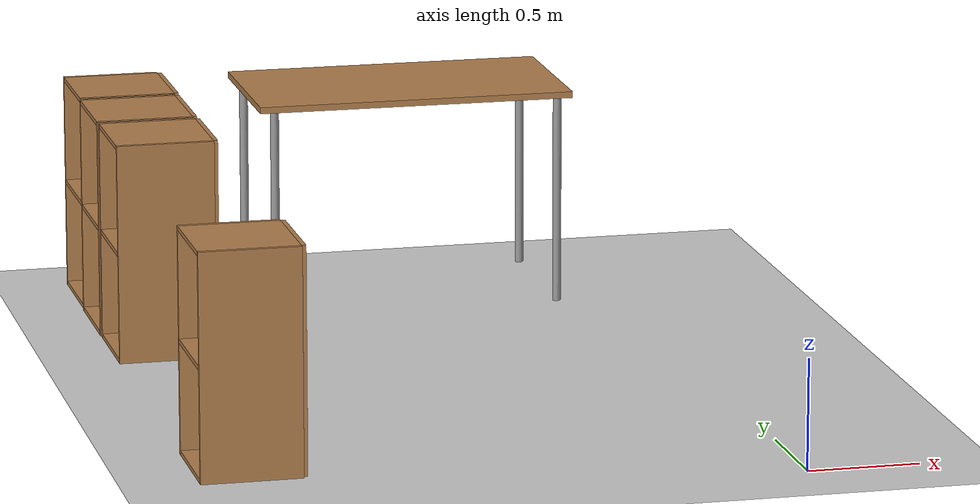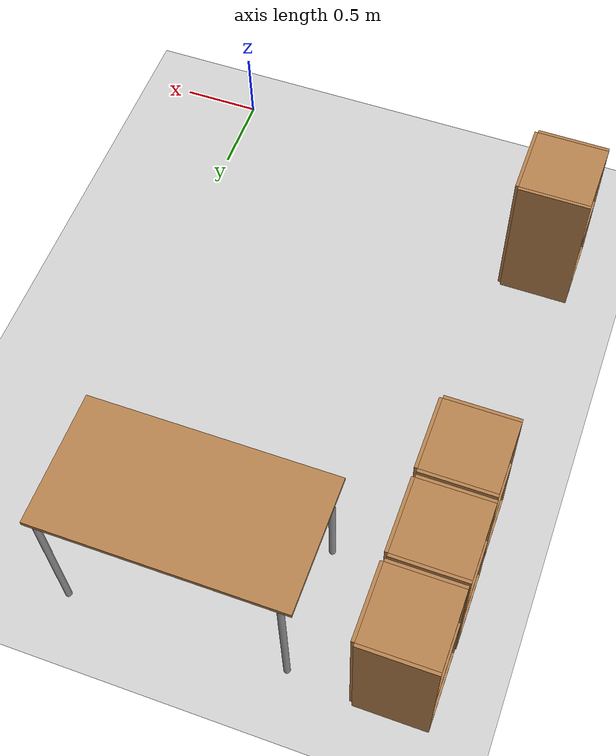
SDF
<sdf version="1.7">
 <world name="default">
  <model name="ground_plane">
   <pose>0 0 0 0 -0 1</pose>
   <static>1</static>
   <link name="link">
    <collision name="collision">
     <geometry><plane><normal>0 0 1</normal><size>100 100</size></plane></geometry>
     <surface>
      <contact><collide_bitmask>65535</collide_bitmask></contact>
      <friction><ode><mu>100</mu><mu2>50</mu2></ode></friction>
     </surface>
    </collision>
    <visual name="visual">
     <cast_shadows>0</cast_shadows>
     <geometry><plane><normal>0 0 1</normal><size>100 100</size></plane></geometry>
     <material>
      <script><uri>file://media/materials/scripts/gazebo.material</uri><name>Gazebo/Grey</name></script>
     </material>
    </visual>
   </link>
  </model>
  <model name="cabinet">
   <static>1</static>
   <link name="cabinet_bottom_plate">
    <inertial>
     <pose>0 0 -1 0 -0 0</pose>
     <inertia><ixx>2.05</ixx><ixy>0</ixy><ixz>0</ixz><iyy>2.05</iyy><iyz>0</iyz><izz>2.05</izz></inertia>
     <mass>25</mass>
    </inertial>
    <collision name="cabinet_bottom_plate_geom">
     <pose>0 0 0.01 0 -0 0</pose>
     <geometry><box><size>0.45 0.45 0.02</size></box></geometry>
    </collision>
    <visual name="cabinet_bottom_plate_geom_visual">
     <pose>0 0 0.01 0 -0 0</pose>
     <geometry><box><size>0.45 0.45 0.02</size></box></geometry>
     <material>
      <script><uri>file://media/materials/scripts/gazebo.material</uri><name>Gazebo/Wood</name></script>
     </material>
    </visual>
    <collision name="cabinet_bottom_plate_geom_cabinet_back_plate">
     <pose>0.235 0 0.51 0 -0 0</pose>
     <geometry><box><size>0.02 0.45 1.02</size></box></geometry>
    </collision>
    <visual name="cabinet_bottom_plate_geom_cabinet_back_plate_visual">
     <pose>0.235 0 0.51 0 -0 0</pose>
     <geometry><box><size>0.02 0.45 1.02</size></box></geometry>
     <material>
      <script><uri>file://media/materials/scripts/gazebo.material</uri><name>Gazebo/Wood</name></script>
     </material>
    </visual>
    <collision name="cabinet_bottom_plate_geom_cabinet_left_plate">
     <pose>0 0.235 0.51 0 -0 0</pose>
     <geometry><box><size>0.45 0.02 1.02</size></box></geometry>
    </collision>
    <visual name="cabinet_bottom_plate_geom_cabinet_left_plate_visual">
     <pose>0 0.235 0.51 0 -0 0</pose>
     <geometry><box><size>0.45 0.02 1.02</size></box></geometry>
     <material>
      <script><uri>file://media/materials/scripts/gazebo.material</uri><name>Gazebo/Wood</name></script>
     </material>
    </visual>
    <collision name="cabinet_bottom_plate_geom_cabinet_middle_plate">
     <pose>0 0 0.51 0 -0 0</pose>
     <geometry><box><size>0.45 0.45 0.02</size></box></geometry>
    </collision>
    <visual name="cabinet_bottom_plate_geom_cabinet_middle_plate_visual">
     <pose>0 0 0.51 0 -0 0</pose>
     <geometry><box><size>0.45 0.45 0.02</size></box></geometry>
     <material>
      <script><uri>file://media/materials/scripts/gazebo.material</uri><name>Gazebo/Wood</name></script>
     </material>
    </visual>
    <collision name="cabinet_bottom_plate_geom_cabinet_right_plate">
     <pose>0 -0.235 0.51 0 -0 0</pose>
     <geometry><box><size>0.45 0.02 1.02</size></box></geometry>
    </collision>
    <visual name="cabinet_bottom_plate_geom_cabinet_right_plate_visual">
     <pose>0 -0.235 0.51 0 -0 0</pose>
     <geometry><box><size>0.45 0.02 1.02</size></box></geometry>
     <material>
      <script><uri>file://media/materials/scripts/gazebo.material</uri><name>Gazebo/Wood</name></script>
     </material>
    </visual>
    <collision name="cabinet_bottom_plate_geom_cabinet_top_plate">
     <pose>0 0 1.01 0 -0 0</pose>
     <geometry><box><size>0.45 0.45 0.02</size></box></geometry>
    </collision>
    <visual name="cabinet_bottom_plate_geom_cabinet_top_plate_visual">
     <pose>0 0 1.01 0 -0 0</pose>
     <geometry><box><size>0.45 0.45 0.02</size></box></geometry>
     <material>
      <script><uri>file://media/materials/scripts/gazebo.material</uri><name>Gazebo/Wood</name></script>
     </material>
    </visual>
   </link>
   <pose>-2.34318 3.63904 0 0 -0 0</pose>
  </model>
  <model name="cabinet_clone">
   <static>1</static>
   <link name="cabinet_bottom_plate">
    <inertial>
     <pose>0 0 -1 0 -0 0</pose>
     <inertia><ixx>2.05</ixx><ixy>0</ixy><ixz>0</ixz><iyy>2.05</iyy><iyz>0</iyz><izz>2.05</izz></inertia>
     <mass>25</mass>
    </inertial>
    <collision name="cabinet_bottom_plate_geom">
     <pose>0 0 0.01 0 -0 0</pose>
     <geometry><box><size>0.45 0.45 0.02</size></box></geometry>
    </collision>
    <visual name="cabinet_bottom_plate_geom_visual">
     <pose>0 0 0.01 0 -0 0</pose>
     <geometry><box><size>0.45 0.45 0.02</size></box></geometry>
     <material>
      <script><uri>file://media/materials/scripts/gazebo.material</uri><name>Gazebo/Wood</name></script>
     </material>
    </visual>
    <collision name="cabinet_bottom_plate_geom_cabinet_back_plate">
     <pose>0.235 0 0.51 0 -0 0</pose>
     <geometry><box><size>0.02 0.45 1.02</size></box></geometry>
    </collision>
    <visual name="cabinet_bottom_plate_geom_cabinet_back_plate_visual">
     <pose>0.235 0 0.51 0 -0 0</pose>
     <geometry><box><size>0.02 0.45 1.02</size></box></geometry>
     <material>
      <script><uri>file://media/materials/scripts/gazebo.material</uri><name>Gazebo/Wood</name></script>
     </material>
    </visual>
    <collision name="cabinet_bottom_plate_geom_cabinet_left_plate">
     <pose>0 0.235 0.51 0 -0 0</pose>
     <geometry><box><size>0.45 0.02 1.02</size></box></geometry>
    </collision>
    <visual name="cabinet_bottom_plate_geom_cabinet_left_plate_visual">
     <pose>0 0.235 0.51 0 -0 0</pose>
     <geometry><box><size>0.45 0.02 1.02</size></box></geometry>
     <material>
      <script><uri>file://media/materials/scripts/gazebo.material</uri><name>Gazebo/Wood</name></script>
     </material>
    </visual>
    <collision name="cabinet_bottom_plate_geom_cabinet_middle_plate">
     <pose>0 0 0.51 0 -0 0</pose>
     <geometry><box><size>0.45 0.45 0.02</size></box></geometry>
    </collision>
    <visual name="cabinet_bottom_plate_geom_cabinet_middle_plate_visual">
     <pose>0 0 0.51 0 -0 0</pose>
     <geometry><box><size>0.45 0.45 0.02</size></box></geometry>
     <material>
      <script><uri>file://media/materials/scripts/gazebo.material</uri><name>Gazebo/Wood</name></script>
     </material>
    </visual>
    <collision name="cabinet_bottom_plate_geom_cabinet_right_plate">
     <pose>0 -0.235 0.51 0 -0 0</pose>
     <geometry><box><size>0.45 0.02 1.02</size></box></geometry>
    </collision>
    <visual name="cabinet_bottom_plate_geom_cabinet_right_plate_visual">
     <pose>0 -0.235 0.51 0 -0 0</pose>
     <geometry><box><size>0.45 0.02 1.02</size></box></geometry>
     <material>
      <script><uri>file://media/materials/scripts/gazebo.material</uri><name>Gazebo/Wood</name></script>
     </material>
    </visual>
    <collision name="cabinet_bottom_plate_geom_cabinet_top_plate">
     <pose>0 0 1.01 0 -0 0</pose>
     <geometry><box><size>0.45 0.45 0.02</size></box></geometry>
    </collision>
    <visual name="cabinet_bottom_plate_geom_cabinet_top_plate_visual">
     <pose>0 0 1.01 0 -0 0</pose>
     <geometry><box><size>0.45 0.45 0.02</size></box></geometry>
     <material>
      <script><uri>file://media/materials/scripts/gazebo.material</uri><name>Gazebo/Wood</name></script>
     </material>
    </visual>
   </link>
   <pose>-2.34868 3.13711 0 0 -0 0</pose>
  </model>
  <model name="cabinet_clone_0">
   <static>1</static>
   <link name="cabinet_bottom_plate">
    <inertial>
     <pose>0 0 -1 0 -0 0</pose>
     <inertia><ixx>2.05</ixx><ixy>0</ixy><ixz>0</ixz><iyy>2.05</iyy><iyz>0</iyz><izz>2.05</izz></inertia>
     <mass>25</mass>
    </inertial>
    <collision name="cabinet_bottom_plate_geom">
     <pose>0 0 0.01 0 -0 0</pose>
     <geometry><box><size>0.45 0.45 0.02</size></box></geometry>
    </collision>
    <visual name="cabinet_bottom_plate_geom_visual">
     <pose>0 0 0.01 0 -0 0</pose>
     <geometry><box><size>0.45 0.45 0.02</size></box></geometry>
     <material>
      <script><uri>file://media/materials/scripts/gazebo.material</uri><name>Gazebo/Wood</name></script>
     </material>
    </visual>
    <collision name="cabinet_bottom_plate_geom_cabinet_back_plate">
     <pose>0.235 0 0.51 0 -0 0</pose>
     <geometry><box><size>0.02 0.45 1.02</size></box></geometry>
    </collision>
    <visual name="cabinet_bottom_plate_geom_cabinet_back_plate_visual">
     <pose>0.235 0 0.51 0 -0 0</pose>
     <geometry><box><size>0.02 0.45 1.02</size></box></geometry>
     <material>
      <script><uri>file://media/materials/scripts/gazebo.material</uri><name>Gazebo/Wood</name></script>
     </material>
    </visual>
    <collision name="cabinet_bottom_plate_geom_cabinet_left_plate">
     <pose>0 0.235 0.51 0 -0 0</pose>
     <geometry><box><size>0.45 0.02 1.02</size></box></geometry>
    </collision>
    <visual name="cabinet_bottom_plate_geom_cabinet_left_plate_visual">
     <pose>0 0.235 0.51 0 -0 0</pose>
     <geometry><box><size>0.45 0.02 1.02</size></box></geometry>
     <material>
      <script><uri>file://media/materials/scripts/gazebo.material</uri><name>Gazebo/Wood</name></script>
     </material>
    </visual>
    <collision name="cabinet_bottom_plate_geom_cabinet_middle_plate">
     <pose>0 0 0.51 0 -0 0</pose>
     <geometry><box><size>0.45 0.45 0.02</size></box></geometry>
    </collision>
    <visual name="cabinet_bottom_plate_geom_cabinet_middle_plate_visual">
     <pose>0 0 0.51 0 -0 0</pose>
     <geometry><box><size>0.45 0.45 0.02</size></box></geometry>
     <material>
      <script><uri>file://media/materials/scripts/gazebo.material</uri><name>Gazebo/Wood</name></script>
     </material>
    </visual>
    <collision name="cabinet_bottom_plate_geom_cabinet_right_plate">
     <pose>0 -0.235 0.51 0 -0 0</pose>
     <geometry><box><size>0.45 0.02 1.02</size></box></geometry>
    </collision>
    <visual name="cabinet_bottom_plate_geom_cabinet_right_plate_visual">
     <pose>0 -0.235 0.51 0 -0 0</pose>
     <geometry><box><size>0.45 0.02 1.02</size></box></geometry>
     <material>
      <script><uri>file://media/materials/scripts/gazebo.material</uri><name>Gazebo/Wood</name></script>
     </material>
    </visual>
    <collision name="cabinet_bottom_plate_geom_cabinet_top_plate">
     <pose>0 0 1.01 0 -0 0</pose>
     <geometry><box><size>0.45 0.45 0.02</size></box></geometry>
    </collision>
    <visual name="cabinet_bottom_plate_geom_cabinet_top_plate_visual">
     <pose>0 0 1.01 0 -0 0</pose>
     <geometry><box><size>0.45 0.45 0.02</size></box></geometry>
     <material>
      <script><uri>file://media/materials/scripts/gazebo.material</uri><name>Gazebo/Wood</name></script>
     </material>
    </visual>
   </link>
   <pose>-2.34547 2.63327 0 0 -0 0</pose>
  </model>
  <model name="cabinet_clone_4">
   <static>1</static>
   <link name="cabinet_bottom_plate">
    <inertial>
     <pose>0 0 -1 0 -0 0</pose>
     <inertia><ixx>2.05</ixx><ixy>0</ixy><ixz>0</ixz><iyy>2.05</iyy><iyz>0</iyz><izz>2.05</izz></inertia>
     <mass>25</mass>
    </inertial>
    <collision name="cabinet_bottom_plate_geom">
     <pose>0 0 0.01 0 -0 0</pose>
     <geometry><box><size>0.45 0.45 0.02</size></box></geometry>
    </collision>
    <visual name="cabinet_bottom_plate_geom_visual">
     <pose>0 0 0.01 0 -0 0</pose>
     <geometry><box><size>0.45 0.45 0.02</size></box></geometry>
     <material>
      <script><uri>file://media/materials/scripts/gazebo.material</uri><name>Gazebo/Wood</name></script>
     </material>
    </visual>
    <collision name="cabinet_bottom_plate_geom_cabinet_back_plate">
     <pose>0.235 0 0.51 0 -0 0</pose>
     <geometry><box><size>0.02 0.45 1.02</size></box></geometry>
    </collision>
    <visual name="cabinet_bottom_plate_geom_cabinet_back_plate_visual">
     <pose>0.235 0 0.51 0 -0 0</pose>
     <geometry><box><size>0.02 0.45 1.02</size></box></geometry>
     <material>
      <script><uri>file://media/materials/scripts/gazebo.material</uri><name>Gazebo/Wood</name></script>
     </material>
    </visual>
    <collision name="cabinet_bottom_plate_geom_cabinet_left_plate">
     <pose>0 0.235 0.51 0 -0 0</pose>
     <geometry><box><size>0.45 0.02 1.02</size></box></geometry>
    </collision>
    <visual name="cabinet_bottom_plate_geom_cabinet_left_plate_visual">
     <pose>0 0.235 0.51 0 -0 0</pose>
     <geometry><box><size>0.45 0.02 1.02</size></box></geometry>
     <material>
      <script><uri>file://media/materials/scripts/gazebo.material</uri><name>Gazebo/Wood</name></script>
     </material>
    </visual>
    <collision name="cabinet_bottom_plate_geom_cabinet_middle_plate">
     <pose>0 0 0.51 0 -0 0</pose>
     <geometry><box><size>0.45 0.45 0.02</size></box></geometry>
    </collision>
    <visual name="cabinet_bottom_plate_geom_cabinet_middle_plate_visual">
     <pose>0 0 0.51 0 -0 0</pose>
     <geometry><box><size>0.45 0.45 0.02</size></box></geometry>
     <material>
      <script><uri>file://media/materials/scripts/gazebo.material</uri><name>Gazebo/Wood</name></script>
     </material>
    </visual>
    <collision name="cabinet_bottom_plate_geom_cabinet_right_plate">
     <pose>0 -0.235 0.51 0 -0 0</pose>
     <geometry><box><size>0.45 0.02 1.02</size></box></geometry>
    </collision>
    <visual name="cabinet_bottom_plate_geom_cabinet_right_plate_visual">
     <pose>0 -0.235 0.51 0 -0 0</pose>
     <geometry><box><size>0.45 0.02 1.02</size></box></geometry>
     <material>
      <script><uri>file://media/materials/scripts/gazebo.material</uri><name>Gazebo/Wood</name></script>
     </material>
    </visual>
    <collision name="cabinet_bottom_plate_geom_cabinet_top_plate">
     <pose>0 0 1.01 0 -0 0</pose>
     <geometry><box><size>0.45 0.45 0.02</size></box></geometry>
    </collision>
    <visual name="cabinet_bottom_plate_geom_cabinet_top_plate_visual">
     <pose>0 0 1.01 0 -0 0</pose>
     <geometry><box><size>0.45 0.45 0.02</size></box></geometry>
     <material>
      <script><uri>file://media/materials/scripts/gazebo.material</uri><name>Gazebo/Wood</name></script>
     </material>
    </visual>
   </link>
   <pose>-2.34562 0.634937 0 0 -0 0</pose>
  </model>
  <model name="table_clone">
   <static>1</static>
   <link name="link">
    <collision name="surface">
     <pose>0 0 1 0 -0 0</pose>
     <geometry><box><size>1.5 0.8 0.03</size></box></geometry>
     <surface><friction><ode><mu>0.6</mu><mu2>0.6</mu2></ode></friction></surface>
    </collision>
    <visual name="visual1">
     <pose>0 0 1 0 -0 0</pose>
     <geometry><box><size>1.5 0.8 0.03</size></box></geometry>
     <material>
      <script><uri>file://media/materials/scripts/gazebo.material</uri><name>Gazebo/Wood</name></script>
     </material>
    </visual>
    <collision name="front_left_leg">
     <pose>0.68 0.38 0.5 0 -0 0</pose>
     <geometry><cylinder><radius>0.02</radius><length>1</length></cylinder></geometry>
    </collision>
    <visual name="front_left_leg">
     <pose>0.68 0.38 0.5 0 -0 0</pose>
     <geometry><cylinder><radius>0.02</radius><length>1</length></cylinder></geometry>
     <material>
      <script><uri>file://media/materials/scripts/gazebo.material</uri><name>Gazebo/Grey</name></script>
     </material>
    </visual>
    <collision name="front_right_leg">
     <pose>0.68 -0.38 0.5 0 -0 0</pose>
     <geometry><cylinder><radius>0.02</radius><length>1</length></cylinder></geometry>
    </collision>
    <visual name="front_right_leg">
     <pose>0.68 -0.38 0.5 0 -0 0</pose>
     <geometry><cylinder><radius>0.02</radius><length>1</length></cylinder></geometry>
     <material>
      <script><uri>file://media/materials/scripts/gazebo.material</uri><name>Gazebo/Grey</name></script>
     </material>
    </visual>
    <collision name="back_right_leg">
     <pose>-0.68 -0.38 0.5 0 -0 0</pose>
     <geometry><cylinder><radius>0.02</radius><length>1</length></cylinder></geometry>
    </collision>
    <visual name="back_right_leg">
     <pose>-0.68 -0.38 0.5 0 -0 0</pose>
     <geometry><cylinder><radius>0.02</radius><length>1</length></cylinder></geometry>
     <material>
      <script><uri>file://media/materials/scripts/gazebo.material</uri><name>Gazebo/Grey</name></script>
     </material>
    </visual>
    <collision name="back_left_leg">
     <pose>-0.68 0.38 0.5 0 -0 0</pose>
     <geometry><cylinder><radius>0.02</radius><length>1</length></cylinder></geometry>
    </collision>
    <visual name="back_left_leg">
     <pose>-0.68 0.38 0.5 0 -0 0</pose>
     <geometry><cylinder><radius>0.02</radius><length>1</length></cylinder></geometry>
     <material>
      <script><uri>file://media/materials/scripts/gazebo.material</uri><name>Gazebo/Grey</name></script>
     </material>
    </visual>
   </link>
   <pose>-1.0288 3.43623 0 0 -0 0</pose>
  </model>
 </world>
</sdf>
